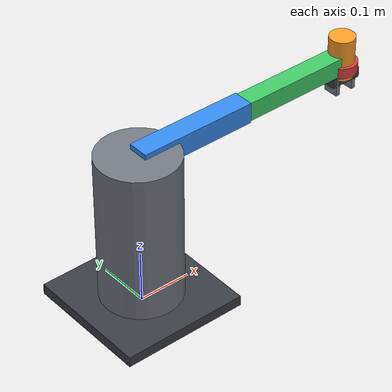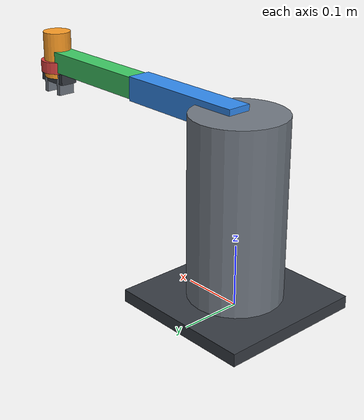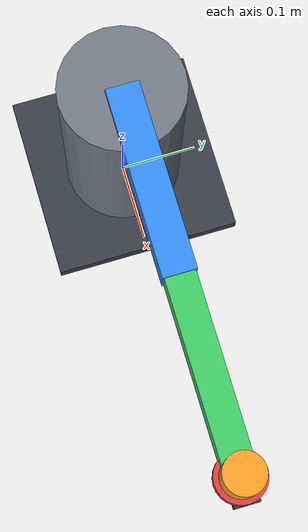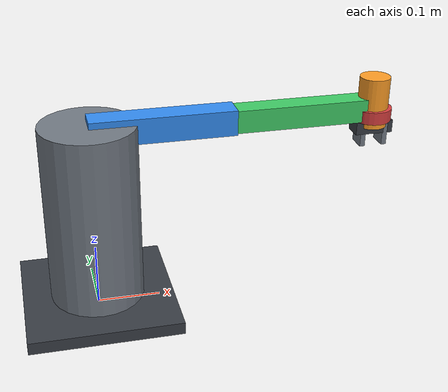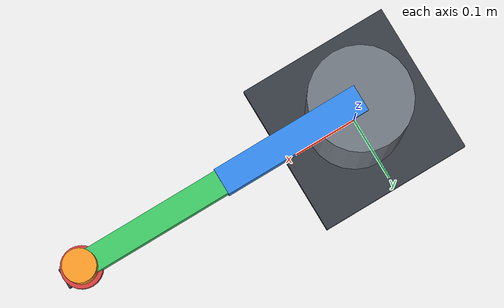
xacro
<?xml version="1.0"?>
<robot name="scara" xmlns:xacro="http://www.ros.org/wiki/xacro">

  <xacro:include filename="params.generated.xacro"/>

  <!-- 仅在 URDF 里用到的几何量（不参与动力学计算） -->
  <xacro:property name="r1" value="0.020"/>
  <xacro:property name="r2" value="0.018"/>
  <xacro:property name="r3" value="0.024"/>
  <xacro:property name="pad_x" value="0.004"/>
  <xacro:property name="pad_y" value="0.015"/>
  <xacro:property name="pad_z" value="0.020"/>
  <!-- 指尖相对工具原点向下 20~60 mm（与 scara_scene.FINGER_SPAN_Z 一致） -->
  <xacro:property name="finger_gap" value="${grip_gap_closed / 2 + pad_x}"/>
  <xacro:property name="m_finger" value="0.03"/>

  <material name="Gazebo/SkyBlue"><color rgba="0.20 0.55 0.95 1"/></material>
  <material name="Gazebo/Green"><color rgba="0.25 0.80 0.40 1"/></material>
  <material name="Gazebo/Orange"><color rgba="1.0 0.62 0.15 1"/></material>
  <material name="Gazebo/Grey"><color rgba="0.45 0.48 0.52 1"/></material>
  <material name="Gazebo/DarkGrey"><color rgba="0.22 0.24 0.27 1"/></material>
  <material name="Gazebo/Red"><color rgba="0.85 0.25 0.25 1"/></material>

  <!-- ============ 世界锚点 ============ -->
  <link name="world"/>
  <joint name="world_fixed" type="fixed">
    <parent link="world"/>
    <child link="base_link"/>
    <origin xyz="0 0 0" rpy="0 0 0"/>
  </joint>

  <!-- ============ 底座（结构件） ============ -->
  <link name="base_link">
    <inertial>
      <mass value="15.0"/>
      <origin xyz="0 0 0.10" rpy="0 0 0"/>
      <inertia ixx="0.150" ixy="0" ixz="0" iyy="0.150" iyz="0" izz="0.120"/>
    </inertial>
    <visual>
      <origin xyz="0 0 0.01" rpy="0 0 0"/>
      <geometry><box size="0.24 0.24 0.02"/></geometry>
      <material name="Gazebo/DarkGrey"><color rgba="0.22 0.24 0.27 1"/></material>
    </visual>
    <visual>
      <origin xyz="0 0 0.16" rpy="0 0 0"/>
      <geometry><cylinder radius="0.075" length="0.30"/></geometry>
      <material name="Gazebo/Grey"><color rgba="0.45 0.48 0.52 1"/></material>
    </visual>
    <collision>
      <origin xyz="0 0 0.15" rpy="0 0 0"/>
      <geometry><cylinder radius="0.09" length="0.30"/></geometry>
    </collision>
    <gazebo reference="base_link"><material>Gazebo/DarkGrey</material></gazebo>
  </link>

  <link name="link1">
    <inertial>
      <origin xyz="${com1} 0 0" rpy="0 0 0"/>
      <mass value="${m1}"/>
      <inertia ixx="${I1x}" ixy="0" ixz="0" iyy="${I1yz}" iyz="0" izz="${I1yz}"/>
    </inertial>
    <visual>
      <origin xyz="${a1/2} 0 0" rpy="0 0 0"/>
      <geometry><box size="${a1} 0.040 0.040"/></geometry>
      <material name="Gazebo/SkyBlue"><color rgba="0.20 0.55 0.95 1"/></material>
    </visual>
    <collision>
      <origin xyz="${a1/2} 0 0" rpy="0 0 0"/>
      <geometry><box size="${a1} 0.040 0.040"/></geometry>
    </collision>
    <gazebo reference="link1"><material>Gazebo/SkyBlue</material></gazebo>
  </link>
  <joint name="joint1" type="revolute">
    <parent link="base_link"/>
    <child link="link1"/>
    <origin xyz="0 0 ${d1}" rpy="0 0 0"/>
    <axis xyz="0 0 1"/>
    <limit lower="-2.268928" upper="2.268928" effort="40" velocity="3.14"/>
    <dynamics damping="0.5" friction="0.3"/>
  </joint>

  <link name="link2">
    <inertial>
      <origin xyz="${com2} 0 0" rpy="0 0 0"/>
      <mass value="${m2}"/>
      <inertia ixx="${I2x}" ixy="0" ixz="0" iyy="${I2yz}" iyz="0" izz="${I2yz}"/>
    </inertial>
    <visual>
      <origin xyz="${a2/2} 0 0" rpy="0 0 0"/>
      <geometry><box size="${a2} 0.036 0.036"/></geometry>
      <material name="Gazebo/Green"><color rgba="0.25 0.80 0.40 1"/></material>
    </visual>
    <collision>
      <origin xyz="${a2/2} 0 0" rpy="0 0 0"/>
      <geometry><box size="${a2} 0.036 0.036"/></geometry>
    </collision>
    <gazebo reference="link2"><material>Gazebo/Green</material></gazebo>
  </link>
  <joint name="joint2" type="revolute">
    <parent link="link1"/>
    <child link="link2"/>
    <origin xyz="${a1} 0 0" rpy="0 0 0"/>
    <axis xyz="0 0 1"/>
    <limit lower="-2.530727" upper="2.530727" effort="40" velocity="3.14"/>
    <dynamics damping="0.4" friction="0.25"/>
  </joint>

  <!-- ============ J3（移动副，轴 -z） ============ -->
  <link name="link3">
    <inertial>
      <origin xyz="0 0 -0.030" rpy="0 0 0"/>
      <mass value="${m3}"/>
      <inertia ixx="0.001332" ixy="0" ixz="0" iyy="0.001332" iyz="0" izz="0.000864"/>
    </inertial>
    <visual>
      <origin xyz="0 0 0.010" rpy="0 0 0"/>
      <geometry><cylinder radius="${r3}" length="0.080"/></geometry>
      <material name="Gazebo/Orange"><color rgba="1.0 0.62 0.15 1"/></material>
    </visual>
    <collision>
      <origin xyz="0 0 0.010" rpy="0 0 0"/>
      <geometry><cylinder radius="${r3}" length="0.080"/></geometry>
    </collision>
    <gazebo reference="link3"><material>Gazebo/Orange</material></gazebo>
  </link>
  <joint name="joint3" type="prismatic">
    <parent link="link2"/>
    <child link="link3"/>
    <origin xyz="${a2} 0 0" rpy="0 0 0"/>
    <axis xyz="0 0 -1"/>
    <limit lower="0" upper="${stroke}" effort="80" velocity="0.5"/>
    <dynamics damping="20.0" friction="10.0"/>
  </joint>

  <!-- ============ J4（法兰 + 夹爪 + 两个随动相机） ============ -->
  <link name="link4">
    <inertial>
      <origin xyz="0 0 -0.020" rpy="0 0 0"/>
      <mass value="${m4}"/>
      <inertia ixx="0.000108" ixy="0" ixz="0" iyy="0.000108" iyz="0" izz="0.000135"/>
    </inertial>
    <visual>
      <origin xyz="0 0 -0.010" rpy="0 0 0"/>
      <geometry><cylinder radius="0.030" length="0.020"/></geometry>
      <material name="Gazebo/Red"><color rgba="0.85 0.25 0.25 1"/></material>
    </visual>
    <visual>
      <origin xyz="0 0 -0.030" rpy="0 0 0"/>
      <geometry><box size="0.060 0.030 0.020"/></geometry>
      <material name="Gazebo/DarkGrey"><color rgba="0.22 0.24 0.27 1"/></material>
    </visual>
    <collision>
      <origin xyz="0 0 -0.020" rpy="0 0 0"/>
      <geometry><cylinder radius="0.030" length="0.040"/></geometry>
    </collision>
    <gazebo reference="link4"><material>Gazebo/Red</material></gazebo>
  </link>
  <joint name="joint4" type="revolute">
    <parent link="link3"/>
    <child link="link4"/>
    <origin xyz="0 0 0" rpy="0 0 0"/>
    <axis xyz="0 0 1"/>
    <limit lower="-6.283185" upper="6.283185" effort="5" velocity="6.28"/>
    <dynamics damping="0.02" friction="0.01"/>
  </joint>

  <!-- ============ 两指夹爪 ============ -->
  <xacro:macro name="finger" params="name side">
    <link name="${name}">
      <inertial>
        <origin xyz="0 0 -0.040" rpy="0 0 0"/>
        <mass value="${m_finger}"/>
        <inertia ixx="0.0000102" ixy="0" ixz="0" iyy="0.0000049" iyz="0" izz="0.0000059"/>
      </inertial>
      <visual>
        <origin xyz="0 0 -0.040" rpy="0 0 0"/>
        <geometry><box size="${2*pad_x} ${2*pad_y} ${2*pad_z}"/></geometry>
        <material name="Gazebo/Grey"><color rgba="0.45 0.48 0.52 1"/></material>
      </visual>
      <collision>
        <origin xyz="0 0 -0.040" rpy="0 0 0"/>
        <geometry><box size="${2*pad_x} ${2*pad_y} ${2*pad_z}"/></geometry>
      </collision>
      <gazebo reference="${name}">
        <material>Gazebo/Grey</material>
        <mu1>1.2</mu1><mu2>1.2</mu2>
      </gazebo>
    </link>
    <joint name="${name}_joint" type="prismatic">
      <parent link="link4"/>
      <child link="${name}"/>
      <origin xyz="${side * finger_gap} 0 0" rpy="0 0 0"/>
      <axis xyz="${side} 0 0"/>
      <limit lower="0" upper="${grip_open}" effort="40" velocity="0.1"/>
      <dynamics damping="2.0"/>
    </joint>
  </xacro:macro>
  <xacro:finger name="gripper_left" side="-1"/>
  <xacro:finger name="gripper_right" side="1"/>

  <!-- ============ 随动相机（参数与 MuJoCo 场景一致） ============ -->
  <link name="cam_eye_link"/>
  <joint name="cam_eye_joint" type="fixed">
    <parent link="link4"/>
    <child link="cam_eye_link"/>
    <origin xyz="${cam_eye_x} ${cam_eye_y} ${cam_eye_z}"
            rpy="${cam_eye_roll} ${cam_eye_pitch} ${cam_eye_yaw}"/>
  </joint>
  <link name="cam_eye_optical"/>
  <joint name="cam_eye_optical_joint" type="fixed">
    <parent link="cam_eye_link"/>
    <child link="cam_eye_optical"/>
    <origin xyz="0 0 0" rpy="-1.5708 0 -1.5708"/>
  </joint>
  <gazebo reference="cam_eye_link">
    <sensor name="cam_eye" type="camera">
      <pose>0 0 0 0 0 0</pose>
      <camera>
        <horizontal_fov>${cam_eye_fovx}</horizontal_fov>
        <image><width>${img_w}</width><height>${img_h}</height></image>
        <clip><near>0.02</near><far>8.0</far></clip>
      </camera>
      <always_on>1</always_on>
      <update_rate>10</update_rate>
      <visualize>false</visualize>
      <plugin filename="libgazebo_ros_camera.so" name="cam_eye_driver">
        <ros>
          <image_topic_name>image_raw</image_topic_name>
          <camera_info_topic_name>camera_info</camera_info_topic_name>
        </ros>
        <frame_name>cam_eye_optical</frame_name>
      </plugin>
    </sensor>
  </gazebo>

  <link name="cam_wrist_link"/>
  <joint name="cam_wrist_joint" type="fixed">
    <parent link="link4"/>
    <child link="cam_wrist_link"/>
    <origin xyz="${cam_wrist_x} ${cam_wrist_y} ${cam_wrist_z}"
            rpy="${cam_wrist_roll} ${cam_wrist_pitch} ${cam_wrist_yaw}"/>
  </joint>
  <link name="cam_wrist_optical"/>
  <joint name="cam_wrist_optical_joint" type="fixed">
    <parent link="cam_wrist_link"/>
    <child link="cam_wrist_optical"/>
    <origin xyz="0 0 0" rpy="-1.5708 0 -1.5708"/>
  </joint>
  <gazebo reference="cam_wrist_link">
    <sensor name="cam_wrist" type="camera">
      <pose>0 0 0 0 0 0</pose>
      <camera>
        <horizontal_fov>${cam_wrist_fovx}</horizontal_fov>
        <image><width>${img_w}</width><height>${img_h}</height></image>
        <clip><near>0.02</near><far>8.0</far></clip>
      </camera>
      <always_on>1</always_on>
      <update_rate>10</update_rate>
      <visualize>false</visualize>
      <plugin filename="libgazebo_ros_camera.so" name="cam_wrist_driver">
        <ros>
          <image_topic_name>image_raw</image_topic_name>
          <camera_info_topic_name>camera_info</camera_info_topic_name>
        </ros>
        <frame_name>cam_wrist_optical</frame_name>
      </plugin>
    </sensor>
  </gazebo>

  <!-- ============ ros2_control 接口 ============ -->
  <ros2_control name="GazeboSystem" type="system">
    <hardware>
      <plugin>gazebo_ros2_control/GazeboSystem</plugin>
    </hardware>
    <joint name="joint1">
      <command_interface name="position"/>
      <state_interface name="position"><param name="initial_value">0.0</param></state_interface>
      <state_interface name="velocity"/>
    </joint>
    <joint name="joint2">
      <command_interface name="position"/>
      <state_interface name="position"><param name="initial_value">-0.5</param></state_interface>
      <state_interface name="velocity"/>
    </joint>
    <joint name="joint3">
      <command_interface name="position"/>
      <state_interface name="position"><param name="initial_value">0.04</param></state_interface>
      <state_interface name="velocity"/>
    </joint>
    <joint name="joint4">
      <command_interface name="position"/>
      <state_interface name="position"><param name="initial_value">0.0</param></state_interface>
      <state_interface name="velocity"/>
    </joint>
    <joint name="gripper_left_joint">
      <!-- 只声明状态接口：手指由 gazebo_ros_force_system 的 /apply_joint_effort 做力控
           （gazebo_ros2_control 的 position/velocity 命令在 Gazebo Classic 里是运动学置位，
            不会产生夹持力） -->
      <state_interface name="position"><param name="initial_value">0.012</param></state_interface>
      <state_interface name="velocity"/>
    </joint>
    <joint name="gripper_right_joint">
      <!-- 只声明状态接口：手指由 gazebo_ros_force_system 的 /apply_joint_effort 做力控
           （gazebo_ros2_control 的 position/velocity 命令在 Gazebo Classic 里是运动学置位，
            不会产生夹持力） -->
      <state_interface name="position"><param name="initial_value">0.012</param></state_interface>
      <state_interface name="velocity"/>
    </joint>
  </ros2_control>

  <gazebo>
    <plugin filename="libgazebo_ros2_control.so" name="gazebo_ros2_control">
      <parameters>$(find scara_bringup)/config/controllers.yaml</parameters>
      <robot_param>robot_description</robot_param>
      <robot_param_node>robot_state_publisher</robot_param_node>
    </plugin>
  </gazebo>

</robot>

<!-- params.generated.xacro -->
<!-- 由 ros2_ws/tools/gen_ros_assets.py 自动生成，请勿手改。
     数据源：python/armlab/spec.py 与 scara_scene.py（MuJoCo 场景）。-->
<robot xmlns:xacro="http://www.ros.org/wiki/xacro">
  <xacro:property name="a1" value="0.225"/>
  <xacro:property name="a2" value="0.225"/>
  <xacro:property name="d1" value="0.3"/>
  <xacro:property name="stroke" value="0.2"/>
  <xacro:property name="m1" value="3"/>
  <xacro:property name="com1" value="0.11"/>
  <xacro:property name="I1x" value="0.000001"/>
  <xacro:property name="I1yz" value="0.01265625"/>
  <xacro:property name="m2" value="1.5"/>
  <xacro:property name="com2" value="0.105"/>
  <xacro:property name="I2x" value="0.000001"/>
  <xacro:property name="I2yz" value="0.006328125"/>
  <xacro:property name="m3" value="3"/>
  <xacro:property name="m4" value="0.3"/>
  <xacro:property name="grip_open" value="0.012"/>
  <xacro:property name="grip_gap_closed" value="0.028"/>
  <xacro:property name="finger_span_top" value="0.02"/>
  <xacro:property name="finger_span_bottom" value="0.06"/>
  <xacro:property name="img_w" value="320"/>
  <xacro:property name="img_h" value="240"/>
  <xacro:property name="cam_front_x" value="0.26"/>
  <xacro:property name="cam_front_y" value="-0.95"/>
  <xacro:property name="cam_front_z" value="0.55"/>
  <xacro:property name="cam_front_roll" value="0"/>
  <xacro:property name="cam_front_pitch" value="0.442184"/>
  <xacro:property name="cam_front_yaw" value="1.570796"/>
  <xacro:property name="cam_front_fovx" value="0.946116"/>
  <xacro:property name="cam_top_x" value="0.4"/>
  <xacro:property name="cam_top_y" value="0"/>
  <xacro:property name="cam_top_z" value="1.25"/>
  <xacro:property name="cam_top_roll" value="0"/>
  <xacro:property name="cam_top_pitch" value="1.570796"/>
  <xacro:property name="cam_top_yaw" value="1.570796"/>
  <xacro:property name="cam_top_fovx" value="0.860797"/>
  <xacro:property name="cam_eye_x" value="0.165"/>
  <xacro:property name="cam_eye_y" value="0"/>
  <xacro:property name="cam_eye_z" value="0.07"/>
  <xacro:property name="cam_eye_roll" value="0"/>
  <xacro:property name="cam_eye_pitch" value="0.629091"/>
  <xacro:property name="cam_eye_yaw" value="3.141593"/>
  <xacro:property name="cam_eye_fovx" value="1.213496"/>
  <xacro:property name="cam_wrist_x" value="0.05"/>
  <xacro:property name="cam_wrist_y" value="0"/>
  <xacro:property name="cam_wrist_z" value="0.03"/>
  <xacro:property name="cam_wrist_roll" value="0"/>
  <xacro:property name="cam_wrist_pitch" value="1.570796"/>
  <xacro:property name="cam_wrist_yaw" value="1.570796"/>
  <xacro:property name="cam_wrist_fovx" value="1.27295"/>
</robot>
